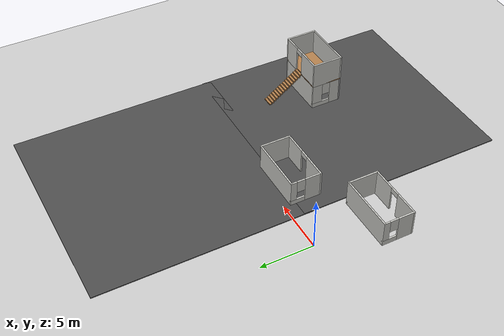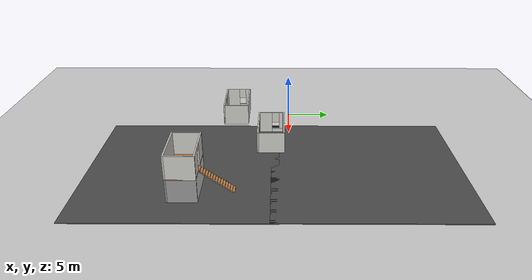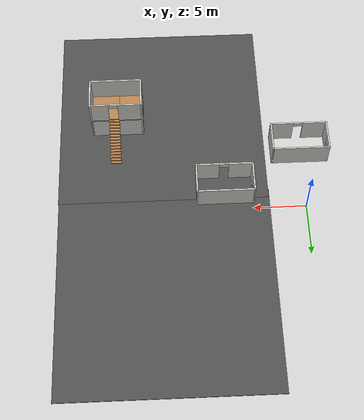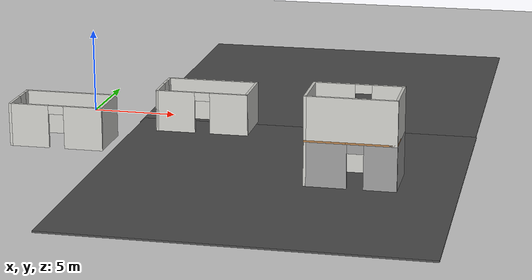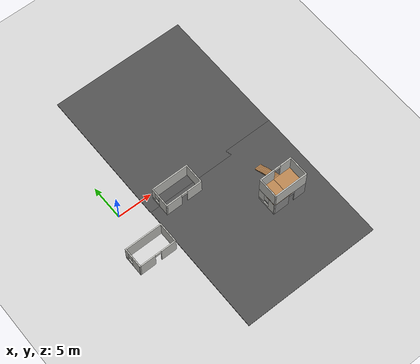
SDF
<sdf version="1.6">
 <world name="default">
  <model name="ground_plane">
   <static>1</static>
   <link name="link">
    <collision name="collision">
     <geometry><plane><normal>0 0 1</normal><size>100 100</size></plane></geometry>
     <surface>
      <contact><collide_bitmask>65535</collide_bitmask></contact>
      <friction><ode><mu>100</mu><mu2>50</mu2></ode></friction>
     </surface>
    </collision>
    <visual name="visual">
     <cast_shadows>0</cast_shadows>
     <geometry><plane><normal>0 0 1</normal><size>100 100</size></plane></geometry>
     <material>
      <script><uri>file://media/materials/scripts/gazebo.material</uri><name>Gazebo/Grey</name></script>
     </material>
    </visual>
   </link>
  </model>
  <model name="2floor">
   <pose>17.7188 -8.65535 0 0 -0 0</pose>
   <link name="Floor_6">
    <pose>0 -1.69037 2.5 0 -0 0</pose>
    <visual name="Floor_6_Visual_0">
     <pose>-1.37755 0 0.05 0 -0 0</pose>
     <geometry><box><size>2.2449 3 0.1</size></box></geometry>
     <material>
      <script><uri>file://media/materials/scripts/gazebo.material</uri><name>Gazebo/Wood</name></script>
      <ambient>1 1 1 1</ambient>
     </material>
     <meta><layer>1</layer></meta>
    </visual>
    <collision name="Floor_6_Collision_0">
     <geometry><box><size>2.2449 3 0.1</size></box></geometry>
     <pose>-1.37755 0 0.05 0 -0 0</pose>
    </collision>
    <visual name="Floor_6_Visual_1">
     <pose>1.12245 -0.059627 0.05 0 -0 0</pose>
     <geometry><box><size>2.7551 2.88075 0.1</size></box></geometry>
     <material>
      <script><uri>file://media/materials/scripts/gazebo.material</uri><name>Gazebo/Wood</name></script>
      <ambient>1 1 1 1</ambient>
     </material>
     <meta><layer>1</layer></meta>
    </visual>
    <collision name="Floor_6_Collision_1">
     <geometry><box><size>2.7551 2.88075 0.1</size></box></geometry>
     <pose>1.12245 -0.059627 0.05 0 -0 0</pose>
    </collision>
    <visual name="Floor_6_Visual_2">
     <pose>1.62245 1.44037 0.05 0 -0 0</pose>
     <geometry><box><size>1.7551 0.119255 0.1</size></box></geometry>
     <material>
      <script><uri>file://media/materials/scripts/gazebo.material</uri><name>Gazebo/Wood</name></script>
      <ambient>1 1 1 1</ambient>
     </material>
     <meta><layer>1</layer></meta>
    </visual>
    <collision name="Floor_6_Collision_2">
     <geometry><box><size>1.7551 0.119255 0.1</size></box></geometry>
     <pose>1.62245 1.44037 0.05 0 -0 0</pose>
    </collision>
   </link>
   <link name="Stairs_3">
    <visual name="Stairs_3_Visual_0">
     <pose>0.244899 3.07371 0.083333 0 -0 0</pose>
     <geometry><box><size>1 0.233333 0.166667</size></box></geometry>
     <material>
      <script><uri>file://media/materials/scripts/gazebo.material</uri><name>Gazebo/Wood</name></script>
      <ambient>1 1 1 1</ambient>
     </material>
     <meta><layer>0</layer></meta>
    </visual>
    <collision name="Stairs_3_Collision_0">
     <geometry><box><size>1 0.233333 0.166667</size></box></geometry>
     <pose>0.244899 3.07371 0.083333 0 -0 0</pose>
    </collision>
    <visual name="Stairs_3_Visual_1">
     <pose>0.244899 2.84037 0.25 0 -0 0</pose>
     <geometry><box><size>1 0.233333 0.166667</size></box></geometry>
     <material>
      <script><uri>file://media/materials/scripts/gazebo.material</uri><name>Gazebo/Wood</name></script>
      <ambient>1 1 1 1</ambient>
     </material>
     <meta><layer>0</layer></meta>
    </visual>
    <collision name="Stairs_3_Collision_1">
     <geometry><box><size>1 0.233333 0.166667</size></box></geometry>
     <pose>0.244899 2.84037 0.25 0 -0 0</pose>
    </collision>
    <visual name="Stairs_3_Visual_2">
     <pose>0.244899 2.60704 0.416667 0 -0 0</pose>
     <geometry><box><size>1 0.233333 0.166667</size></box></geometry>
     <material>
      <script><uri>file://media/materials/scripts/gazebo.material</uri><name>Gazebo/Wood</name></script>
      <ambient>1 1 1 1</ambient>
     </material>
     <meta><layer>0</layer></meta>
    </visual>
    <collision name="Stairs_3_Collision_2">
     <geometry><box><size>1 0.233333 0.166667</size></box></geometry>
     <pose>0.244899 2.60704 0.416667 0 -0 0</pose>
    </collision>
    <visual name="Stairs_3_Visual_3">
     <pose>0.244899 2.37371 0.583333 0 -0 0</pose>
     <geometry><box><size>1 0.233333 0.166667</size></box></geometry>
     <material>
      <script><uri>file://media/materials/scripts/gazebo.material</uri><name>Gazebo/Wood</name></script>
      <ambient>1 1 1 1</ambient>
     </material>
     <meta><layer>0</layer></meta>
    </visual>
    <collision name="Stairs_3_Collision_3">
     <geometry><box><size>1 0.233333 0.166667</size></box></geometry>
     <pose>0.244899 2.37371 0.583333 0 -0 0</pose>
    </collision>
    <visual name="Stairs_3_Visual_4">
     <pose>0.244899 2.14037 0.75 0 -0 0</pose>
     <geometry><box><size>1 0.233333 0.166667</size></box></geometry>
     <material>
      <script><uri>file://media/materials/scripts/gazebo.material</uri><name>Gazebo/Wood</name></script>
      <ambient>1 1 1 1</ambient>
     </material>
     <meta><layer>0</layer></meta>
    </visual>
    <collision name="Stairs_3_Collision_4">
     <geometry><box><size>1 0.233333 0.166667</size></box></geometry>
     <pose>0.244899 2.14037 0.75 0 -0 0</pose>
    </collision>
    <visual name="Stairs_3_Visual_5">
     <pose>0.244899 1.90704 0.916667 0 -0 0</pose>
     <geometry><box><size>1 0.233333 0.166667</size></box></geometry>
     <material>
      <script><uri>file://media/materials/scripts/gazebo.material</uri><name>Gazebo/Wood</name></script>
      <ambient>1 1 1 1</ambient>
     </material>
     <meta><layer>0</layer></meta>
    </visual>
    <collision name="Stairs_3_Collision_5">
     <geometry><box><size>1 0.233333 0.166667</size></box></geometry>
     <pose>0.244899 1.90704 0.916667 0 -0 0</pose>
    </collision>
    <visual name="Stairs_3_Visual_6">
     <pose>0.244899 1.67371 1.08333 0 -0 0</pose>
     <geometry><box><size>1 0.233333 0.166667</size></box></geometry>
     <material>
      <script><uri>file://media/materials/scripts/gazebo.material</uri><name>Gazebo/Wood</name></script>
      <ambient>1 1 1 1</ambient>
     </material>
     <meta><layer>0</layer></meta>
    </visual>
    <collision name="Stairs_3_Collision_6">
     <geometry><box><size>1 0.233333 0.166667</size></box></geometry>
     <pose>0.244899 1.67371 1.08333 0 -0 0</pose>
    </collision>
    <visual name="Stairs_3_Visual_7">
     <pose>0.244899 1.44037 1.25 0 -0 0</pose>
     <geometry><box><size>1 0.233333 0.166667</size></box></geometry>
     <material>
      <script><uri>file://media/materials/scripts/gazebo.material</uri><name>Gazebo/Wood</name></script>
      <ambient>1 1 1 1</ambient>
     </material>
     <meta><layer>0</layer></meta>
    </visual>
    <collision name="Stairs_3_Collision_7">
     <geometry><box><size>1 0.233333 0.166667</size></box></geometry>
     <pose>0.244899 1.44037 1.25 0 -0 0</pose>
    </collision>
    <visual name="Stairs_3_Visual_8">
     <pose>0.244899 1.20704 1.41667 0 -0 0</pose>
     <geometry><box><size>1 0.233333 0.166667</size></box></geometry>
     <material>
      <script><uri>file://media/materials/scripts/gazebo.material</uri><name>Gazebo/Wood</name></script>
      <ambient>1 1 1 1</ambient>
     </material>
     <meta><layer>0</layer></meta>
    </visual>
    <collision name="Stairs_3_Collision_8">
     <geometry><box><size>1 0.233333 0.166667</size></box></geometry>
     <pose>0.244899 1.20704 1.41667 0 -0 0</pose>
    </collision>
    <visual name="Stairs_3_Visual_9">
     <pose>0.244899 0.973706 1.58333 0 -0 0</pose>
     <geometry><box><size>1 0.233333 0.166667</size></box></geometry>
     <material>
      <script><uri>file://media/materials/scripts/gazebo.material</uri><name>Gazebo/Wood</name></script>
      <ambient>1 1 1 1</ambient>
     </material>
     <meta><layer>0</layer></meta>
    </visual>
    <collision name="Stairs_3_Collision_9">
     <geometry><box><size>1 0.233333 0.166667</size></box></geometry>
     <pose>0.244899 0.973706 1.58333 0 -0 0</pose>
    </collision>
    <visual name="Stairs_3_Visual_10">
     <pose>0.244899 0.740373 1.75 0 -0 0</pose>
     <geometry><box><size>1 0.233333 0.166667</size></box></geometry>
     <material>
      <script><uri>file://media/materials/scripts/gazebo.material</uri><name>Gazebo/Wood</name></script>
      <ambient>1 1 1 1</ambient>
     </material>
     <meta><layer>0</layer></meta>
    </visual>
    <collision name="Stairs_3_Collision_10">
     <geometry><box><size>1 0.233333 0.166667</size></box></geometry>
     <pose>0.244899 0.740373 1.75 0 -0 0</pose>
    </collision>
    <visual name="Stairs_3_Visual_11">
     <pose>0.244899 0.507039 1.91667 0 -0 0</pose>
     <geometry><box><size>1 0.233333 0.166667</size></box></geometry>
     <material>
      <script><uri>file://media/materials/scripts/gazebo.material</uri><name>Gazebo/Wood</name></script>
      <ambient>1 1 1 1</ambient>
     </material>
     <meta><layer>0</layer></meta>
    </visual>
    <collision name="Stairs_3_Collision_11">
     <geometry><box><size>1 0.233333 0.166667</size></box></geometry>
     <pose>0.244899 0.507039 1.91667 0 -0 0</pose>
    </collision>
    <visual name="Stairs_3_Visual_12">
     <pose>0.244899 0.273706 2.08333 0 -0 0</pose>
     <geometry><box><size>1 0.233333 0.166667</size></box></geometry>
     <material>
      <script><uri>file://media/materials/scripts/gazebo.material</uri><name>Gazebo/Wood</name></script>
      <ambient>1 1 1 1</ambient>
     </material>
     <meta><layer>0</layer></meta>
    </visual>
    <collision name="Stairs_3_Collision_12">
     <geometry><box><size>1 0.233333 0.166667</size></box></geometry>
     <pose>0.244899 0.273706 2.08333 0 -0 0</pose>
    </collision>
    <visual name="Stairs_3_Visual_13">
     <pose>0.244899 0.040373 2.25 0 -0 0</pose>
     <geometry><box><size>1 0.233333 0.166667</size></box></geometry>
     <material>
      <script><uri>file://media/materials/scripts/gazebo.material</uri><name>Gazebo/Wood</name></script>
      <ambient>1 1 1 1</ambient>
     </material>
     <meta><layer>0</layer></meta>
    </visual>
    <collision name="Stairs_3_Collision_13">
     <geometry><box><size>1 0.233333 0.166667</size></box></geometry>
     <pose>0.244899 0.040373 2.25 0 -0 0</pose>
    </collision>
    <visual name="Stairs_3_Visual_14">
     <pose>0.244899 -0.192961 2.41667 0 -0 0</pose>
     <geometry><box><size>1 0.233333 0.166667</size></box></geometry>
     <material>
      <script><uri>file://media/materials/scripts/gazebo.material</uri><name>Gazebo/Wood</name></script>
      <ambient>1 1 1 1</ambient>
     </material>
     <meta><layer>0</layer></meta>
    </visual>
    <collision name="Stairs_3_Collision_14">
     <geometry><box><size>1 0.233333 0.166667</size></box></geometry>
     <pose>0.244899 -0.192961 2.41667 0 -0 0</pose>
    </collision>
   </link>
   <link name="Wall_53">
    <collision name="Wall_53_Collision">
     <geometry><box><size>5 0.15 2.5</size></box></geometry>
     <pose>0 0 1.25 0 -0 0</pose>
    </collision>
    <visual name="Wall_53_Visual">
     <pose>0 0 1.25 0 -0 0</pose>
     <geometry><box><size>5 0.15 2.5</size></box></geometry>
     <material>
      <script><uri>file://media/materials/scripts/gazebo.material</uri><name>Gazebo/CeilingTiled</name></script>
      <ambient>1 1 1 1</ambient>
     </material>
     <meta><layer>0</layer></meta>
    </visual>
    <pose>0 -0.265372 0 0 -0 0</pose>
   </link>
   <link name="Wall_54">
    <collision name="Wall_54_Collision">
     <geometry><box><size>3 0.15 2.5</size></box></geometry>
     <pose>0 0 1.25 0 -0 0</pose>
    </collision>
    <visual name="Wall_54_Visual">
     <pose>0 0 1.25 0 -0 0</pose>
     <geometry><box><size>3 0.15 2.5</size></box></geometry>
     <material>
      <script><uri>file://media/materials/scripts/gazebo.material</uri><name>Gazebo/Grey</name></script>
      <ambient>1 1 1 1</ambient>
     </material>
     <meta><layer>0</layer></meta>
    </visual>
    <pose>2.425 -1.69037 0 0 -0 -1.5708</pose>
   </link>
   <link name="Wall_55">
    <pose>0 -3.11537 0 0 -0 3.14159</pose>
    <visual name="Wall_55_Visual_0">
     <pose>-1.60614 0 1.25 0 -0 0</pose>
     <geometry><box><size>1.78771 0.15 2.5</size></box></geometry>
     <material>
      <script><uri>file://media/materials/scripts/gazebo.material</uri><name>Gazebo/Grey</name></script>
      <ambient>1 1 1 1</ambient>
     </material>
     <meta><layer>0</layer></meta>
    </visual>
    <collision name="Wall_55_Collision_0">
     <geometry><box><size>1.78771 0.15 2.5</size></box></geometry>
     <pose>-1.60614 0 1.25 0 -0 0</pose>
    </collision>
    <visual name="Wall_55_Visual_1">
     <pose>1.34386 0 1.25 0 -0 0</pose>
     <geometry><box><size>2.31229 0.15 2.5</size></box></geometry>
     <material>
      <script><uri>file://media/materials/scripts/gazebo.material</uri><name>Gazebo/Grey</name></script>
      <ambient>1 1 1 1</ambient>
     </material>
     <meta><layer>0</layer></meta>
    </visual>
    <collision name="Wall_55_Collision_1">
     <geometry><box><size>2.31229 0.15 2.5</size></box></geometry>
     <pose>1.34386 0 1.25 0 -0 0</pose>
    </collision>
    <visual name="Wall_55_Visual_2">
     <pose>-0.26229 0 2.25 0 -0 0</pose>
     <geometry><box><size>0.9 0.15 0.5</size></box></geometry>
     <material>
      <script><uri>file://media/materials/scripts/gazebo.material</uri><name>Gazebo/Grey</name></script>
      <ambient>1 1 1 1</ambient>
     </material>
     <meta><layer>0</layer></meta>
    </visual>
    <collision name="Wall_55_Collision_2">
     <geometry><box><size>0.9 0.15 0.5</size></box></geometry>
     <pose>-0.26229 0 2.25 0 -0 0</pose>
    </collision>
   </link>
   <link name="Wall_56">
    <pose>-2.425 -1.69037 0 0 -0 1.5708</pose>
    <visual name="Wall_56_Visual_0">
     <pose>-0.915062 0 1.25 0 -0 0</pose>
     <geometry><box><size>1.16987 0.15 2.5</size></box></geometry>
     <material>
      <script><uri>file://media/materials/scripts/gazebo.material</uri><name>Gazebo/CeilingTiled</name></script>
      <ambient>1 1 1 1</ambient>
     </material>
     <meta><layer>0</layer></meta>
    </visual>
    <collision name="Wall_56_Collision_0">
     <geometry><box><size>1.16987 0.15 2.5</size></box></geometry>
     <pose>-0.915062 0 1.25 0 -0 0</pose>
    </collision>
    <visual name="Wall_56_Visual_1">
     <pose>0.584938 0 0.25 0 -0 0</pose>
     <geometry><box><size>1.83013 0.15 0.5</size></box></geometry>
     <material>
      <script><uri>file://media/materials/scripts/gazebo.material</uri><name>Gazebo/CeilingTiled</name></script>
      <ambient>1 1 1 1</ambient>
     </material>
     <meta><layer>0</layer></meta>
    </visual>
    <collision name="Wall_56_Collision_1">
     <geometry><box><size>1.83013 0.15 0.5</size></box></geometry>
     <pose>0.584938 0 0.25 0 -0 0</pose>
    </collision>
    <visual name="Wall_56_Visual_2">
     <pose>0.984938 0 1.5 0 -0 0</pose>
     <geometry><box><size>1.03012 0.15 2</size></box></geometry>
     <material>
      <script><uri>file://media/materials/scripts/gazebo.material</uri><name>Gazebo/CeilingTiled</name></script>
      <ambient>1 1 1 1</ambient>
     </material>
     <meta><layer>0</layer></meta>
    </visual>
    <collision name="Wall_56_Collision_2">
     <geometry><box><size>1.03012 0.15 2</size></box></geometry>
     <pose>0.984938 0 1.5 0 -0 0</pose>
    </collision>
    <visual name="Wall_56_Visual_3">
     <pose>0.069875 0 1.9 0 -0 0</pose>
     <geometry><box><size>0.8 0.15 1.2</size></box></geometry>
     <material>
      <script><uri>file://media/materials/scripts/gazebo.material</uri><name>Gazebo/CeilingTiled</name></script>
      <ambient>1 1 1 1</ambient>
     </material>
     <meta><layer>0</layer></meta>
    </visual>
    <collision name="Wall_56_Collision_3">
     <geometry><box><size>0.8 0.15 1.2</size></box></geometry>
     <pose>0.069875 0 1.9 0 -0 0</pose>
    </collision>
   </link>
   <link name="Wall_58">
    <pose>0 -0.265372 2.5 0 -0 0</pose>
    <visual name="Wall_58_Visual_0">
     <pose>-1.35255 0 1.25 0 -0 0</pose>
     <geometry><box><size>2.2949 0.15 2.5</size></box></geometry>
     <material>
      <script><uri>file://media/materials/scripts/gazebo.material</uri><name>Gazebo/CeilingTiled</name></script>
      <ambient>1 1 1 1</ambient>
     </material>
     <meta><layer>1</layer></meta>
    </visual>
    <collision name="Wall_58_Collision_0">
     <geometry><box><size>2.2949 0.15 2.5</size></box></geometry>
     <pose>-1.35255 0 1.25 0 -0 0</pose>
    </collision>
    <visual name="Wall_58_Visual_1">
     <pose>1.59745 0 1.25 0 -0 0</pose>
     <geometry><box><size>1.8051 0.15 2.5</size></box></geometry>
     <material>
      <script><uri>file://media/materials/scripts/gazebo.material</uri><name>Gazebo/CeilingTiled</name></script>
      <ambient>1 1 1 1</ambient>
     </material>
     <meta><layer>1</layer></meta>
    </visual>
    <collision name="Wall_58_Collision_1">
     <geometry><box><size>1.8051 0.15 2.5</size></box></geometry>
     <pose>1.59745 0 1.25 0 -0 0</pose>
    </collision>
    <visual name="Wall_58_Visual_2">
     <pose>0.244899 0 2.25 0 -0 0</pose>
     <geometry><box><size>0.9 0.15 0.5</size></box></geometry>
     <material>
      <script><uri>file://media/materials/scripts/gazebo.material</uri><name>Gazebo/CeilingTiled</name></script>
      <ambient>1 1 1 1</ambient>
     </material>
     <meta><layer>1</layer></meta>
    </visual>
    <collision name="Wall_58_Collision_2">
     <geometry><box><size>0.9 0.15 0.5</size></box></geometry>
     <pose>0.244899 0 2.25 0 -0 0</pose>
    </collision>
   </link>
   <link name="Wall_59">
    <collision name="Wall_59_Collision">
     <geometry><box><size>3 0.15 2.5</size></box></geometry>
     <pose>0 0 1.25 0 -0 0</pose>
    </collision>
    <visual name="Wall_59_Visual">
     <pose>0 0 1.25 0 -0 0</pose>
     <geometry><box><size>3 0.15 2.5</size></box></geometry>
     <material>
      <script><uri>file://media/materials/scripts/gazebo.material</uri><name>Gazebo/CeilingTiled</name></script>
      <ambient>1 1 1 1</ambient>
     </material>
     <meta><layer>1</layer></meta>
    </visual>
    <pose>2.425 -1.69037 2.5 0 -0 -1.5708</pose>
   </link>
   <link name="Wall_60">
    <collision name="Wall_60_Collision">
     <geometry><box><size>5 0.15 2.5</size></box></geometry>
     <pose>0 0 1.25 0 -0 0</pose>
    </collision>
    <visual name="Wall_60_Visual">
     <pose>0 0 1.25 0 -0 0</pose>
     <geometry><box><size>5 0.15 2.5</size></box></geometry>
     <material>
      <script><uri>file://media/materials/scripts/gazebo.material</uri><name>Gazebo/CeilingTiled</name></script>
      <ambient>1 1 1 1</ambient>
     </material>
     <meta><layer>1</layer></meta>
    </visual>
    <pose>0 -3.11537 2.5 0 -0 3.14159</pose>
   </link>
   <link name="Wall_61">
    <collision name="Wall_61_Collision">
     <geometry><box><size>3 0.15 2.5</size></box></geometry>
     <pose>0 0 1.25 0 -0 0</pose>
    </collision>
    <visual name="Wall_61_Visual">
     <pose>0 0 1.25 0 -0 0</pose>
     <geometry><box><size>3 0.15 2.5</size></box></geometry>
     <material>
      <script><uri>file://media/materials/scripts/gazebo.material</uri><name>Gazebo/CeilingTiled</name></script>
      <ambient>1 1 1 1</ambient>
     </material>
     <meta><layer>1</layer></meta>
    </visual>
    <pose>-2.425 -1.69037 2.5 0 -0 1.5708</pose>
   </link>
   <static>1</static>
  </model>
  <model name="whitehouse">
   <pose>0.166745 -6.42405 0 0 -0 0</pose>
   <link name="Wall_62">
    <collision name="Wall_62_Collision">
     <geometry><box><size>5.5 0.15 2.5</size></box></geometry>
     <pose>0 0 1.25 0 -0 0</pose>
    </collision>
    <visual name="Wall_62_Visual">
     <pose>0 0 1.25 0 -0 0</pose>
     <geometry><box><size>5.5 0.15 2.5</size></box></geometry>
     <material>
      <script><uri>file://media/materials/scripts/gazebo.material</uri><name>Gazebo/CeilingTiled</name></script>
      <ambient>1 1 1 1</ambient>
     </material>
     <meta><layer>0</layer></meta>
    </visual>
    <pose>-0 1.425 0 0 -0 0</pose>
   </link>
   <link name="Wall_63">
    <collision name="Wall_63_Collision">
     <geometry><box><size>3 0.15 2.5</size></box></geometry>
     <pose>0 0 1.25 0 -0 0</pose>
    </collision>
    <visual name="Wall_63_Visual">
     <pose>0 0 1.25 0 -0 0</pose>
     <geometry><box><size>3 0.15 2.5</size></box></geometry>
     <material>
      <script><uri>file://media/materials/scripts/gazebo.material</uri><name>Gazebo/CeilingTiled</name></script>
      <ambient>1 1 1 1</ambient>
     </material>
     <meta><layer>0</layer></meta>
    </visual>
    <pose>2.675 0 0 0 -0 -1.5708</pose>
   </link>
   <link name="Wall_64">
    <pose>-0 -1.425 0 0 -0 3.14159</pose>
    <visual name="Wall_64_Visual_0">
     <pose>-1.62255 0 1.25 0 -0 0</pose>
     <geometry><box><size>2.25489 0.15 2.5</size></box></geometry>
     <material>
      <script><uri>file://media/materials/scripts/gazebo.material</uri><name>Gazebo/CeilingTiled</name></script>
      <ambient>1 1 1 1</ambient>
     </material>
     <meta><layer>0</layer></meta>
    </visual>
    <collision name="Wall_64_Collision_0">
     <geometry><box><size>2.25489 0.15 2.5</size></box></geometry>
     <pose>-1.62255 0 1.25 0 -0 0</pose>
    </collision>
    <visual name="Wall_64_Visual_1">
     <pose>1.57745 0 1.25 0 -0 0</pose>
     <geometry><box><size>2.34511 0.15 2.5</size></box></geometry>
     <material>
      <script><uri>file://media/materials/scripts/gazebo.material</uri><name>Gazebo/CeilingTiled</name></script>
      <ambient>1 1 1 1</ambient>
     </material>
     <meta><layer>0</layer></meta>
    </visual>
    <collision name="Wall_64_Collision_1">
     <geometry><box><size>2.34511 0.15 2.5</size></box></geometry>
     <pose>1.57745 0 1.25 0 -0 0</pose>
    </collision>
    <visual name="Wall_64_Visual_2">
     <pose>-0.045105 0 2.25 0 -0 0</pose>
     <geometry><box><size>0.9 0.15 0.5</size></box></geometry>
     <material>
      <script><uri>file://media/materials/scripts/gazebo.material</uri><name>Gazebo/CeilingTiled</name></script>
      <ambient>1 1 1 1</ambient>
     </material>
     <meta><layer>0</layer></meta>
    </visual>
    <collision name="Wall_64_Collision_2">
     <geometry><box><size>0.9 0.15 0.5</size></box></geometry>
     <pose>-0.045105 0 2.25 0 -0 0</pose>
    </collision>
   </link>
   <link name="Wall_65">
    <pose>-2.675 0 0 0 -0 1.5708</pose>
    <visual name="Wall_65_Visual_0">
     <pose>-0.700468 0 1.25 0 -0 0</pose>
     <geometry><box><size>1.59906 0.15 2.5</size></box></geometry>
     <material>
      <script><uri>file://media/materials/scripts/gazebo.material</uri><name>Gazebo/CeilingTiled</name></script>
      <ambient>1 1 1 1</ambient>
     </material>
     <meta><layer>0</layer></meta>
    </visual>
    <collision name="Wall_65_Collision_0">
     <geometry><box><size>1.59906 0.15 2.5</size></box></geometry>
     <pose>-0.700468 0 1.25 0 -0 0</pose>
    </collision>
    <visual name="Wall_65_Visual_1">
     <pose>0.799532 0 0.25 0 -0 0</pose>
     <geometry><box><size>1.40094 0.15 0.5</size></box></geometry>
     <material>
      <script><uri>file://media/materials/scripts/gazebo.material</uri><name>Gazebo/CeilingTiled</name></script>
      <ambient>1 1 1 1</ambient>
     </material>
     <meta><layer>0</layer></meta>
    </visual>
    <collision name="Wall_65_Collision_1">
     <geometry><box><size>1.40094 0.15 0.5</size></box></geometry>
     <pose>0.799532 0 0.25 0 -0 0</pose>
    </collision>
    <visual name="Wall_65_Visual_2">
     <pose>1.19953 0 1.5 0 -0 0</pose>
     <geometry><box><size>0.600936 0.15 2</size></box></geometry>
     <material>
      <script><uri>file://media/materials/scripts/gazebo.material</uri><name>Gazebo/CeilingTiled</name></script>
      <ambient>1 1 1 1</ambient>
     </material>
     <meta><layer>0</layer></meta>
    </visual>
    <collision name="Wall_65_Collision_2">
     <geometry><box><size>0.600936 0.15 2</size></box></geometry>
     <pose>1.19953 0 1.5 0 -0 0</pose>
    </collision>
    <visual name="Wall_65_Visual_3">
     <pose>0.499064 0 1.9 0 -0 0</pose>
     <geometry><box><size>0.8 0.15 1.2</size></box></geometry>
     <material>
      <script><uri>file://media/materials/scripts/gazebo.material</uri><name>Gazebo/CeilingTiled</name></script>
      <ambient>1 1 1 1</ambient>
     </material>
     <meta><layer>0</layer></meta>
    </visual>
    <collision name="Wall_65_Collision_3">
     <geometry><box><size>0.8 0.15 1.2</size></box></geometry>
     <pose>0.499064 0 1.9 0 -0 0</pose>
    </collision>
   </link>
   <static>1</static>
  </model>
  <model name="whitehouse_clone_0">
   <pose>7.61215 -2.07906 0 0 -0 0</pose>
   <link name="Wall_62">
    <collision name="Wall_62_Collision">
     <geometry><box><size>5.5 0.15 2.5</size></box></geometry>
     <pose>0 0 1.25 0 -0 0</pose>
    </collision>
    <visual name="Wall_62_Visual">
     <pose>0 0 1.25 0 -0 0</pose>
     <geometry><box><size>5.5 0.15 2.5</size></box></geometry>
     <material>
      <script><uri>file://media/materials/scripts/gazebo.material</uri><name>Gazebo/CeilingTiled</name></script>
      <ambient>1 1 1 1</ambient>
     </material>
     <meta><layer>0</layer></meta>
    </visual>
    <pose>-0 1.425 0 0 -0 0</pose>
   </link>
   <link name="Wall_63">
    <collision name="Wall_63_Collision">
     <geometry><box><size>3 0.15 2.5</size></box></geometry>
     <pose>0 0 1.25 0 -0 0</pose>
    </collision>
    <visual name="Wall_63_Visual">
     <pose>0 0 1.25 0 -0 0</pose>
     <geometry><box><size>3 0.15 2.5</size></box></geometry>
     <material>
      <script><uri>file://media/materials/scripts/gazebo.material</uri><name>Gazebo/CeilingTiled</name></script>
      <ambient>1 1 1 1</ambient>
     </material>
     <meta><layer>0</layer></meta>
    </visual>
    <pose>2.675 0 0 0 -0 -1.5708</pose>
   </link>
   <link name="Wall_64">
    <pose>-0 -1.425 0 0 -0 3.14159</pose>
    <visual name="Wall_64_Visual_0">
     <pose>-1.62255 0 1.25 0 -0 0</pose>
     <geometry><box><size>2.25489 0.15 2.5</size></box></geometry>
     <material>
      <script><uri>file://media/materials/scripts/gazebo.material</uri><name>Gazebo/CeilingTiled</name></script>
      <ambient>1 1 1 1</ambient>
     </material>
     <meta><layer>0</layer></meta>
    </visual>
    <collision name="Wall_64_Collision_0">
     <geometry><box><size>2.25489 0.15 2.5</size></box></geometry>
     <pose>-1.62255 0 1.25 0 -0 0</pose>
    </collision>
    <visual name="Wall_64_Visual_1">
     <pose>1.57745 0 1.25 0 -0 0</pose>
     <geometry><box><size>2.34511 0.15 2.5</size></box></geometry>
     <material>
      <script><uri>file://media/materials/scripts/gazebo.material</uri><name>Gazebo/CeilingTiled</name></script>
      <ambient>1 1 1 1</ambient>
     </material>
     <meta><layer>0</layer></meta>
    </visual>
    <collision name="Wall_64_Collision_1">
     <geometry><box><size>2.34511 0.15 2.5</size></box></geometry>
     <pose>1.57745 0 1.25 0 -0 0</pose>
    </collision>
    <visual name="Wall_64_Visual_2">
     <pose>-0.045105 0 2.25 0 -0 0</pose>
     <geometry><box><size>0.9 0.15 0.5</size></box></geometry>
     <material>
      <script><uri>file://media/materials/scripts/gazebo.material</uri><name>Gazebo/CeilingTiled</name></script>
      <ambient>1 1 1 1</ambient>
     </material>
     <meta><layer>0</layer></meta>
    </visual>
    <collision name="Wall_64_Collision_2">
     <geometry><box><size>0.9 0.15 0.5</size></box></geometry>
     <pose>-0.045105 0 2.25 0 -0 0</pose>
    </collision>
   </link>
   <link name="Wall_65">
    <pose>-2.675 0 0 0 -0 1.5708</pose>
    <visual name="Wall_65_Visual_0">
     <pose>-0.700468 0 1.25 0 -0 0</pose>
     <geometry><box><size>1.59906 0.15 2.5</size></box></geometry>
     <material>
      <script><uri>file://media/materials/scripts/gazebo.material</uri><name>Gazebo/CeilingTiled</name></script>
      <ambient>1 1 1 1</ambient>
     </material>
     <meta><layer>0</layer></meta>
    </visual>
    <collision name="Wall_65_Collision_0">
     <geometry><box><size>1.59906 0.15 2.5</size></box></geometry>
     <pose>-0.700468 0 1.25 0 -0 0</pose>
    </collision>
    <visual name="Wall_65_Visual_1">
     <pose>0.799532 0 0.25 0 -0 0</pose>
     <geometry><box><size>1.40094 0.15 0.5</size></box></geometry>
     <material>
      <script><uri>file://media/materials/scripts/gazebo.material</uri><name>Gazebo/CeilingTiled</name></script>
      <ambient>1 1 1 1</ambient>
     </material>
     <meta><layer>0</layer></meta>
    </visual>
    <collision name="Wall_65_Collision_1">
     <geometry><box><size>1.40094 0.15 0.5</size></box></geometry>
     <pose>0.799532 0 0.25 0 -0 0</pose>
    </collision>
    <visual name="Wall_65_Visual_2">
     <pose>1.19953 0 1.5 0 -0 0</pose>
     <geometry><box><size>0.600936 0.15 2</size></box></geometry>
     <material>
      <script><uri>file://media/materials/scripts/gazebo.material</uri><name>Gazebo/CeilingTiled</name></script>
      <ambient>1 1 1 1</ambient>
     </material>
     <meta><layer>0</layer></meta>
    </visual>
    <collision name="Wall_65_Collision_2">
     <geometry><box><size>0.600936 0.15 2</size></box></geometry>
     <pose>1.19953 0 1.5 0 -0 0</pose>
    </collision>
    <visual name="Wall_65_Visual_3">
     <pose>0.499064 0 1.9 0 -0 0</pose>
     <geometry><box><size>0.8 0.15 1.2</size></box></geometry>
     <material>
      <script><uri>file://media/materials/scripts/gazebo.material</uri><name>Gazebo/CeilingTiled</name></script>
      <ambient>1 1 1 1</ambient>
     </material>
     <meta><layer>0</layer></meta>
    </visual>
    <collision name="Wall_65_Collision_3">
     <geometry><box><size>0.8 0.15 1.2</size></box></geometry>
     <pose>0.499064 0 1.9 0 -0 0</pose>
    </collision>
   </link>
   <static>1</static>
  </model>
  <model name="asphalt_plane">
   <static>1</static>
   <link name="link">
    <collision name="collision"><geometry><box><size>20 20 0.1</size></box></geometry></collision>
    <visual name="visual">
     <cast_shadows>0</cast_shadows>
     <geometry><box><size>20 20 0.1</size></box></geometry>
     <material>
      <script>
       <uri>model://asphalt_plane/materials/scripts</uri>
       <uri>model://asphalt_plane/materials/textures</uri>
       <name>vrc/asphalt</name>
      </script>
     </material>
    </visual>
   </link>
   <pose>13.4266 7.98499 0 0 -0 0</pose>
  </model>
  <model name="asphalt_plane_1">
   <static>1</static>
   <link name="link">
    <collision name="collision"><geometry><box><size>20 20 0.1</size></box></geometry></collision>
    <visual name="visual">
     <cast_shadows>0</cast_shadows>
     <geometry><box><size>20 20 0.1</size></box></geometry>
     <material>
      <script>
       <uri>model://asphalt_plane/materials/scripts</uri>
       <uri>model://asphalt_plane/materials/textures</uri>
       <name>vrc/asphalt</name>
      </script>
     </material>
    </visual>
   </link>
   <pose>13.4748 -11.1502 0 0 -0 0</pose>
  </model>
 </world>
</sdf>
